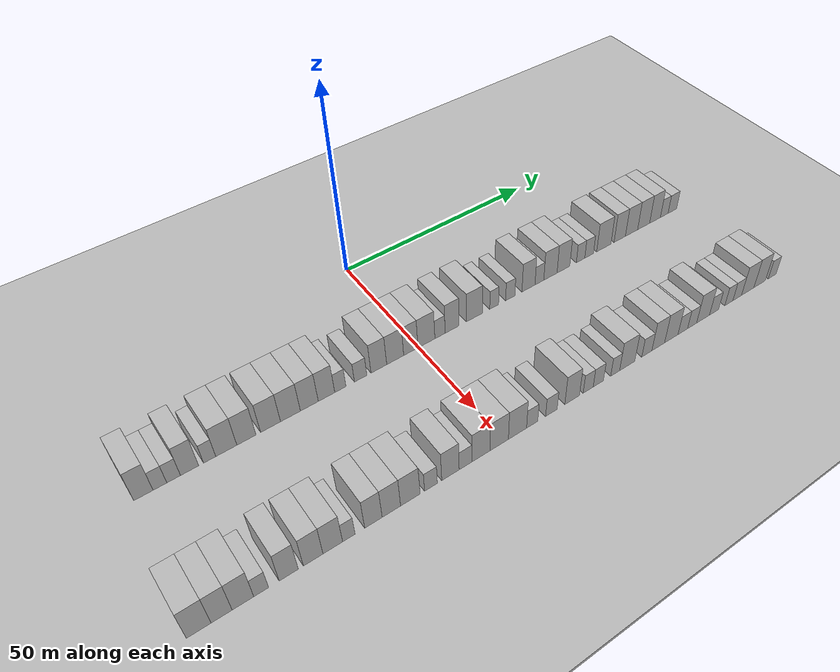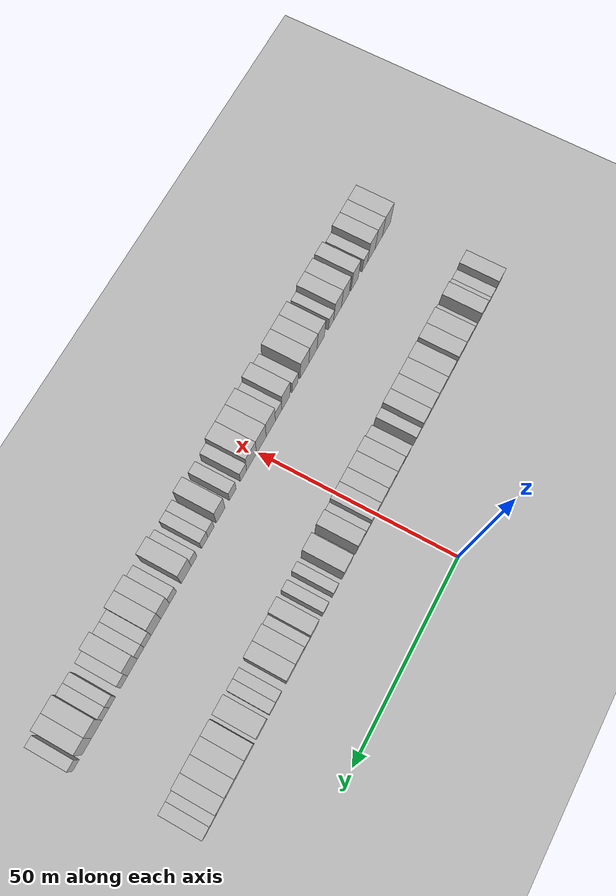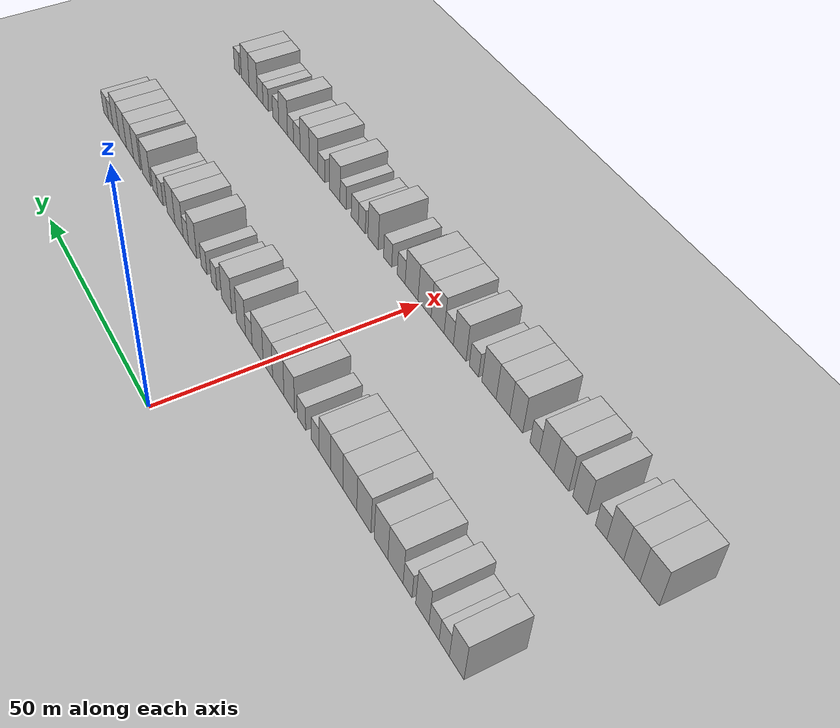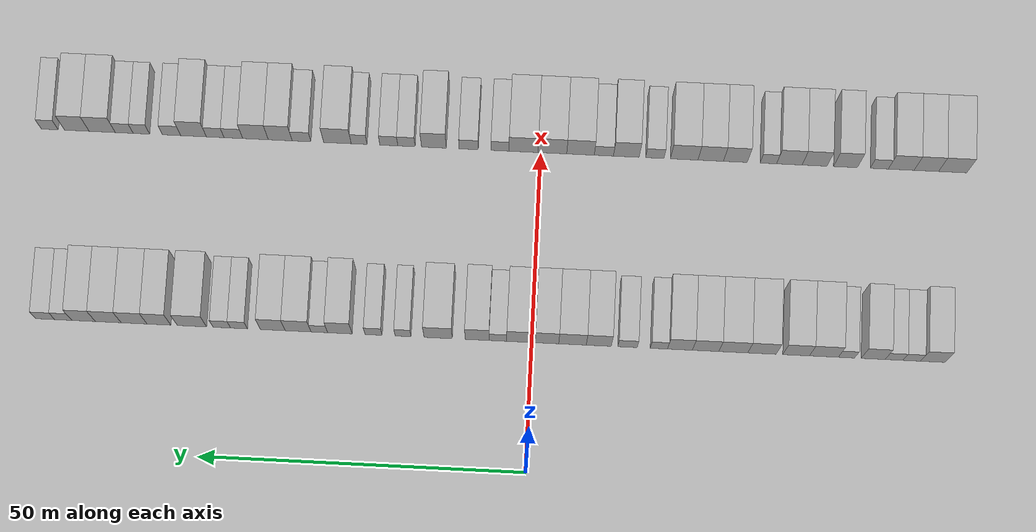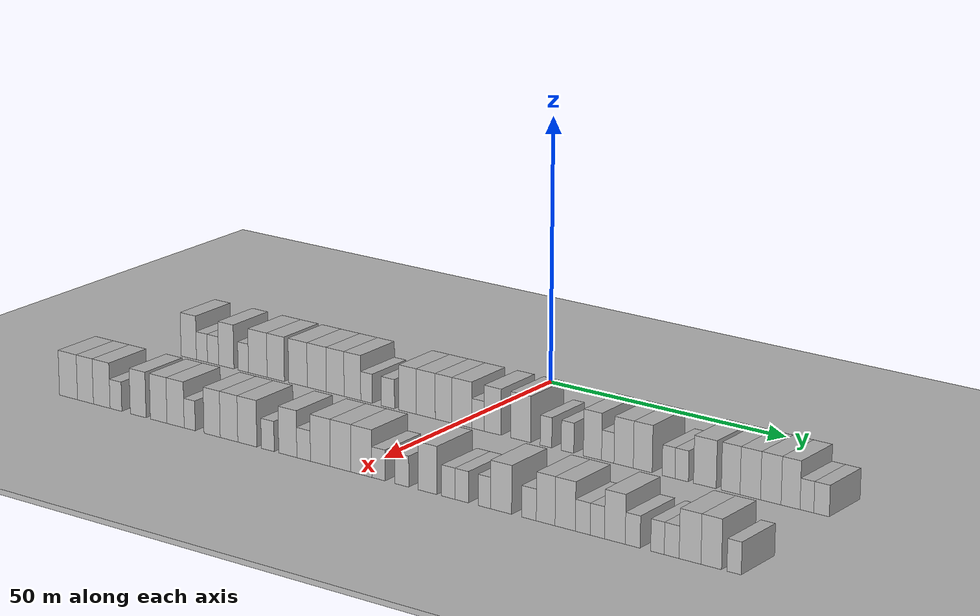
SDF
<sdf version="1.6">
 <world name="default">
  <include><name>ground_plane_1</name><uri>model://HANNAS_ground_plane</uri></include>
  <include>
   <name>ground_plane_2</name>
   <uri>model://HANNAS_ground_plane</uri>
   <pose>100 0 0  0 0 0</pose>
  </include>
  <model name="building_38">
   <static>1</static>
   <pose>25.0000 -61.3049 0 0.000000 0.000000 0.000000</pose>
   <link name="link">
    <pose>0 0 4.50 0 0 0</pose>
    <collision name="collision"><geometry><box><size>10.0000 3.7427 9.0000</size></box></geometry></collision>
    <visual name="visual">
     <cast_shadows>0</cast_shadows>
     <geometry><box><size>10.0000 3.7427 9.0000</size></box></geometry>
     <material>
      <script>
       <uri>model://HANNAS_wall/materials/scripts</uri>
       <uri>model://HANNAS_wall/materials/textures</uri>
       <name>vrc/HANNAS_wall</name>
      </script>
     </material>
    </visual>
   </link>
  </model>
  <model name="building_39">
   <static>1</static>
   <pose>25.0000 -58.0913 0 0.000000 0.000000 0.000000</pose>
   <link name="link">
    <pose>0 0 3.00 0 0 0</pose>
    <collision name="collision"><geometry><box><size>10.0000 2.6844 6.0000</size></box></geometry></collision>
    <visual name="visual">
     <cast_shadows>0</cast_shadows>
     <geometry><box><size>10.0000 2.6844 6.0000</size></box></geometry>
     <material>
      <script>
       <uri>model://HANNAS_wall/materials/scripts</uri>
       <uri>model://HANNAS_wall/materials/textures</uri>
       <name>vrc/HANNAS_wall</name>
      </script>
     </material>
    </visual>
   </link>
  </model>
  <model name="building_40">
   <static>1</static>
   <pose>25.0000 -55.3934 0 0.000000 0.000000 0.000000</pose>
   <link name="link">
    <pose>0 0 3.00 0 0 0</pose>
    <collision name="collision"><geometry><box><size>10.0000 2.7114 6.0000</size></box></geometry></collision>
    <visual name="visual">
     <cast_shadows>0</cast_shadows>
     <geometry><box><size>10.0000 2.7114 6.0000</size></box></geometry>
     <material>
      <script>
       <uri>model://HANNAS_wall/materials/scripts</uri>
       <uri>model://HANNAS_wall/materials/textures</uri>
       <name>vrc/HANNAS_wall</name>
      </script>
     </material>
    </visual>
   </link>
  </model>
  <model name="building_41">
   <static>1</static>
   <pose>25.0000 -52.2071 0 0.000000 0.000000 0.000000</pose>
   <link name="link">
    <pose>0 0 4.50 0 0 0</pose>
    <collision name="collision"><geometry><box><size>10.0000 3.6612 9.0000</size></box></geometry></collision>
    <visual name="visual">
     <cast_shadows>0</cast_shadows>
     <geometry><box><size>10.0000 3.6612 9.0000</size></box></geometry>
     <material>
      <script>
       <uri>model://HANNAS_wall/materials/scripts</uri>
       <uri>model://HANNAS_wall/materials/textures</uri>
       <name>vrc/HANNAS_wall</name>
      </script>
     </material>
    </visual>
   </link>
  </model>
  <model name="building_42">
   <static>1</static>
   <pose>25.0000 -48.1247 0 0.000000 0.000000 0.000000</pose>
   <link name="link">
    <pose>0 0 3.00 0 0 0</pose>
    <collision name="collision"><geometry><box><size>10.0000 2.5035 6.0000</size></box></geometry></collision>
    <visual name="visual">
     <cast_shadows>0</cast_shadows>
     <geometry><box><size>10.0000 2.5035 6.0000</size></box></geometry>
     <material>
      <script>
       <uri>model://HANNAS_wall/materials/scripts</uri>
       <uri>model://HANNAS_wall/materials/textures</uri>
       <name>vrc/HANNAS_wall</name>
      </script>
     </material>
    </visual>
   </link>
  </model>
  <model name="building_43">
   <static>1</static>
   <pose>25.0000 -44.6643 0 0.000000 0.000000 0.000000</pose>
   <link name="link">
    <pose>0 0 4.50 0 0 0</pose>
    <collision name="collision"><geometry><box><size>10.0000 4.4174 9.0000</size></box></geometry></collision>
    <visual name="visual">
     <cast_shadows>0</cast_shadows>
     <geometry><box><size>10.0000 4.4174 9.0000</size></box></geometry>
     <material>
      <script>
       <uri>model://HANNAS_wall/materials/scripts</uri>
       <uri>model://HANNAS_wall/materials/textures</uri>
       <name>vrc/HANNAS_wall</name>
      </script>
     </material>
    </visual>
   </link>
  </model>
  <model name="building_44">
   <static>1</static>
   <pose>25.0000 -40.4192 0 0.000000 0.000000 0.000000</pose>
   <link name="link">
    <pose>0 0 4.50 0 0 0</pose>
    <collision name="collision"><geometry><box><size>10.0000 4.0726 9.0000</size></box></geometry></collision>
    <visual name="visual">
     <cast_shadows>0</cast_shadows>
     <geometry><box><size>10.0000 4.0726 9.0000</size></box></geometry>
     <material>
      <script>
       <uri>model://HANNAS_wall/materials/scripts</uri>
       <uri>model://HANNAS_wall/materials/textures</uri>
       <name>vrc/HANNAS_wall</name>
      </script>
     </material>
    </visual>
   </link>
  </model>
  <model name="building_45">
   <static>1</static>
   <pose>25.0000 -35.2057 0 0.000000 0.000000 0.000000</pose>
   <link name="link">
    <pose>0 0 4.50 0 0 0</pose>
    <collision name="collision"><geometry><box><size>10.0000 4.3545 9.0000</size></box></geometry></collision>
    <visual name="visual">
     <cast_shadows>0</cast_shadows>
     <geometry><box><size>10.0000 4.3545 9.0000</size></box></geometry>
     <material>
      <script>
       <uri>model://HANNAS_wall/materials/scripts</uri>
       <uri>model://HANNAS_wall/materials/textures</uri>
       <name>vrc/HANNAS_wall</name>
      </script>
     </material>
    </visual>
   </link>
  </model>
  <model name="building_46">
   <static>1</static>
   <pose>25.0000 -30.8133 0 0.000000 0.000000 0.000000</pose>
   <link name="link">
    <pose>0 0 4.50 0 0 0</pose>
    <collision name="collision"><geometry><box><size>10.0000 4.4304 9.0000</size></box></geometry></collision>
    <visual name="visual">
     <cast_shadows>0</cast_shadows>
     <geometry><box><size>10.0000 4.4304 9.0000</size></box></geometry>
     <material>
      <script>
       <uri>model://HANNAS_wall/materials/scripts</uri>
       <uri>model://HANNAS_wall/materials/textures</uri>
       <name>vrc/HANNAS_wall</name>
      </script>
     </material>
    </visual>
   </link>
  </model>
  <model name="building_47">
   <static>1</static>
   <pose>25.0000 -26.5654 0 0.000000 0.000000 0.000000</pose>
   <link name="link">
    <pose>0 0 4.50 0 0 0</pose>
    <collision name="collision"><geometry><box><size>10.0000 4.0655 9.0000</size></box></geometry></collision>
    <visual name="visual">
     <cast_shadows>0</cast_shadows>
     <geometry><box><size>10.0000 4.0655 9.0000</size></box></geometry>
     <material>
      <script>
       <uri>model://HANNAS_wall/materials/scripts</uri>
       <uri>model://HANNAS_wall/materials/textures</uri>
       <name>vrc/HANNAS_wall</name>
      </script>
     </material>
    </visual>
   </link>
  </model>
  <model name="building_48">
   <static>1</static>
   <pose>25.0000 -22.6271 0 0.000000 0.000000 0.000000</pose>
   <link name="link">
    <pose>0 0 4.50 0 0 0</pose>
    <collision name="collision"><geometry><box><size>10.0000 3.8111 9.0000</size></box></geometry></collision>
    <visual name="visual">
     <cast_shadows>0</cast_shadows>
     <geometry><box><size>10.0000 3.8111 9.0000</size></box></geometry>
     <material>
      <script>
       <uri>model://HANNAS_wall/materials/scripts</uri>
       <uri>model://HANNAS_wall/materials/textures</uri>
       <name>vrc/HANNAS_wall</name>
      </script>
     </material>
    </visual>
   </link>
  </model>
  <model name="building_49">
   <static>1</static>
   <pose>25.0000 -19.4066 0 0.000000 0.000000 0.000000</pose>
   <link name="link">
    <pose>0 0 3.00 0 0 0</pose>
    <collision name="collision"><geometry><box><size>10.0000 2.6298 6.0000</size></box></geometry></collision>
    <visual name="visual">
     <cast_shadows>0</cast_shadows>
     <geometry><box><size>10.0000 2.6298 6.0000</size></box></geometry>
     <material>
      <script>
       <uri>model://HANNAS_wall/materials/scripts</uri>
       <uri>model://HANNAS_wall/materials/textures</uri>
       <name>vrc/HANNAS_wall</name>
      </script>
     </material>
    </visual>
   </link>
  </model>
  <model name="building_50">
   <static>1</static>
   <pose>25.0000 -14.6031 0 0.000000 0.000000 0.000000</pose>
   <link name="link">
    <pose>0 0 3.00 0 0 0</pose>
    <collision name="collision"><geometry><box><size>10.0000 2.9773 6.0000</size></box></geometry></collision>
    <visual name="visual">
     <cast_shadows>0</cast_shadows>
     <geometry><box><size>10.0000 2.9773 6.0000</size></box></geometry>
     <material>
      <script>
       <uri>model://HANNAS_wall/materials/scripts</uri>
       <uri>model://HANNAS_wall/materials/textures</uri>
       <name>vrc/HANNAS_wall</name>
      </script>
     </material>
    </visual>
   </link>
  </model>
  <model name="building_51">
   <static>1</static>
   <pose>25.0000 -10.1956 0 0.000000 0.000000 0.000000</pose>
   <link name="link">
    <pose>0 0 4.50 0 0 0</pose>
    <collision name="collision"><geometry><box><size>10.0000 3.8377 9.0000</size></box></geometry></collision>
    <visual name="visual">
     <cast_shadows>0</cast_shadows>
     <geometry><box><size>10.0000 3.8377 9.0000</size></box></geometry>
     <material>
      <script>
       <uri>model://HANNAS_wall/materials/scripts</uri>
       <uri>model://HANNAS_wall/materials/textures</uri>
       <name>vrc/HANNAS_wall</name>
      </script>
     </material>
    </visual>
   </link>
  </model>
  <model name="building_52">
   <static>1</static>
   <pose>25.0000 -6.1652 0 0.000000 0.000000 0.000000</pose>
   <link name="link">
    <pose>0 0 4.50 0 0 0</pose>
    <collision name="collision"><geometry><box><size>10.0000 4.2232 9.0000</size></box></geometry></collision>
    <visual name="visual">
     <cast_shadows>0</cast_shadows>
     <geometry><box><size>10.0000 4.2232 9.0000</size></box></geometry>
     <material>
      <script>
       <uri>model://HANNAS_wall/materials/scripts</uri>
       <uri>model://HANNAS_wall/materials/textures</uri>
       <name>vrc/HANNAS_wall</name>
      </script>
     </material>
    </visual>
   </link>
  </model>
  <model name="building_53">
   <static>1</static>
   <pose>25.0000 -2.2436 0 0.000000 0.000000 0.000000</pose>
   <link name="link">
    <pose>0 0 4.50 0 0 0</pose>
    <collision name="collision"><geometry><box><size>10.0000 3.6199 9.0000</size></box></geometry></collision>
    <visual name="visual">
     <cast_shadows>0</cast_shadows>
     <geometry><box><size>10.0000 3.6199 9.0000</size></box></geometry>
     <material>
      <script>
       <uri>model://HANNAS_wall/materials/scripts</uri>
       <uri>model://HANNAS_wall/materials/textures</uri>
       <name>vrc/HANNAS_wall</name>
      </script>
     </material>
    </visual>
   </link>
  </model>
  <model name="building_54">
   <static>1</static>
   <pose>25.0000 1.7339 0 0.000000 0.000000 0.000000</pose>
   <link name="link">
    <pose>0 0 4.50 0 0 0</pose>
    <collision name="collision"><geometry><box><size>10.0000 4.3352 9.0000</size></box></geometry></collision>
    <visual name="visual">
     <cast_shadows>0</cast_shadows>
     <geometry><box><size>10.0000 4.3352 9.0000</size></box></geometry>
     <material>
      <script>
       <uri>model://HANNAS_wall/materials/scripts</uri>
       <uri>model://HANNAS_wall/materials/textures</uri>
       <name>vrc/HANNAS_wall</name>
      </script>
     </material>
    </visual>
   </link>
  </model>
  <model name="building_55">
   <static>1</static>
   <pose>25.0000 5.2427 0 0.000000 0.000000 0.000000</pose>
   <link name="link">
    <pose>0 0 3.00 0 0 0</pose>
    <collision name="collision"><geometry><box><size>10.0000 2.6825 6.0000</size></box></geometry></collision>
    <visual name="visual">
     <cast_shadows>0</cast_shadows>
     <geometry><box><size>10.0000 2.6825 6.0000</size></box></geometry>
     <material>
      <script>
       <uri>model://HANNAS_wall/materials/scripts</uri>
       <uri>model://HANNAS_wall/materials/textures</uri>
       <name>vrc/HANNAS_wall</name>
      </script>
     </material>
    </visual>
   </link>
  </model>
  <model name="building_56">
   <static>1</static>
   <pose>25.0000 8.4225 0 0.000000 0.000000 0.000000</pose>
   <link name="link">
    <pose>0 0 4.50 0 0 0</pose>
    <collision name="collision"><geometry><box><size>10.0000 3.6769 9.0000</size></box></geometry></collision>
    <visual name="visual">
     <cast_shadows>0</cast_shadows>
     <geometry><box><size>10.0000 3.6769 9.0000</size></box></geometry>
     <material>
      <script>
       <uri>model://HANNAS_wall/materials/scripts</uri>
       <uri>model://HANNAS_wall/materials/textures</uri>
       <name>vrc/HANNAS_wall</name>
      </script>
     </material>
    </visual>
   </link>
  </model>
  <model name="building_57">
   <static>1</static>
   <pose>25.0000 14.4207 0 0.000000 0.000000 0.000000</pose>
   <link name="link">
    <pose>0 0 4.50 0 0 0</pose>
    <collision name="collision"><geometry><box><size>10.0000 4.3196 9.0000</size></box></geometry></collision>
    <visual name="visual">
     <cast_shadows>0</cast_shadows>
     <geometry><box><size>10.0000 4.3196 9.0000</size></box></geometry>
     <material>
      <script>
       <uri>model://HANNAS_wall/materials/scripts</uri>
       <uri>model://HANNAS_wall/materials/textures</uri>
       <name>vrc/HANNAS_wall</name>
      </script>
     </material>
    </visual>
   </link>
  </model>
  <model name="building_58">
   <static>1</static>
   <pose>25.0000 19.7999 0 0.000000 0.000000 0.000000</pose>
   <link name="link">
    <pose>0 0 3.00 0 0 0</pose>
    <collision name="collision"><geometry><box><size>10.0000 2.4388 6.0000</size></box></geometry></collision>
    <visual name="visual">
     <cast_shadows>0</cast_shadows>
     <geometry><box><size>10.0000 2.4388 6.0000</size></box></geometry>
     <material>
      <script>
       <uri>model://HANNAS_wall/materials/scripts</uri>
       <uri>model://HANNAS_wall/materials/textures</uri>
       <name>vrc/HANNAS_wall</name>
      </script>
     </material>
    </visual>
   </link>
  </model>
  <model name="building_59">
   <static>1</static>
   <pose>25.0000 24.3251 0 0.000000 0.000000 0.000000</pose>
   <link name="link">
    <pose>0 0 3.00 0 0 0</pose>
    <collision name="collision"><geometry><box><size>10.0000 2.6116 6.0000</size></box></geometry></collision>
    <visual name="visual">
     <cast_shadows>0</cast_shadows>
     <geometry><box><size>10.0000 2.6116 6.0000</size></box></geometry>
     <material>
      <script>
       <uri>model://HANNAS_wall/materials/scripts</uri>
       <uri>model://HANNAS_wall/materials/textures</uri>
       <name>vrc/HANNAS_wall</name>
      </script>
     </material>
    </visual>
   </link>
  </model>
  <model name="building_60">
   <static>1</static>
   <pose>25.0000 29.5080 0 0.000000 0.000000 0.000000</pose>
   <link name="link">
    <pose>0 0 4.50 0 0 0</pose>
    <collision name="collision"><geometry><box><size>10.0000 3.7542 9.0000</size></box></geometry></collision>
    <visual name="visual">
     <cast_shadows>0</cast_shadows>
     <geometry><box><size>10.0000 3.7542 9.0000</size></box></geometry>
     <material>
      <script>
       <uri>model://HANNAS_wall/materials/scripts</uri>
       <uri>model://HANNAS_wall/materials/textures</uri>
       <name>vrc/HANNAS_wall</name>
      </script>
     </material>
    </visual>
   </link>
  </model>
  <model name="building_61">
   <static>1</static>
   <pose>25.0000 32.6641 0 0.000000 0.000000 0.000000</pose>
   <link name="link">
    <pose>0 0 3.00 0 0 0</pose>
    <collision name="collision"><geometry><box><size>10.0000 2.5580 6.0000</size></box></geometry></collision>
    <visual name="visual">
     <cast_shadows>0</cast_shadows>
     <geometry><box><size>10.0000 2.5580 6.0000</size></box></geometry>
     <material>
      <script>
       <uri>model://HANNAS_wall/materials/scripts</uri>
       <uri>model://HANNAS_wall/materials/textures</uri>
       <name>vrc/HANNAS_wall</name>
      </script>
     </material>
    </visual>
   </link>
  </model>
  <model name="building_62">
   <static>1</static>
   <pose>25.0000 35.9144 0 0.000000 0.000000 0.000000</pose>
   <link name="link">
    <pose>0 0 4.50 0 0 0</pose>
    <collision name="collision"><geometry><box><size>10.0000 3.9425 9.0000</size></box></geometry></collision>
    <visual name="visual">
     <cast_shadows>0</cast_shadows>
     <geometry><box><size>10.0000 3.9425 9.0000</size></box></geometry>
     <material>
      <script>
       <uri>model://HANNAS_wall/materials/scripts</uri>
       <uri>model://HANNAS_wall/materials/textures</uri>
       <name>vrc/HANNAS_wall</name>
      </script>
     </material>
    </visual>
   </link>
  </model>
  <model name="building_63">
   <static>1</static>
   <pose>25.0000 39.7955 0 0.000000 0.000000 0.000000</pose>
   <link name="link">
    <pose>0 0 4.50 0 0 0</pose>
    <collision name="collision"><geometry><box><size>10.0000 3.8197 9.0000</size></box></geometry></collision>
    <visual name="visual">
     <cast_shadows>0</cast_shadows>
     <geometry><box><size>10.0000 3.8197 9.0000</size></box></geometry>
     <material>
      <script>
       <uri>model://HANNAS_wall/materials/scripts</uri>
       <uri>model://HANNAS_wall/materials/textures</uri>
       <name>vrc/HANNAS_wall</name>
      </script>
     </material>
    </visual>
   </link>
  </model>
  <model name="building_64">
   <static>1</static>
   <pose>25.0000 44.9944 0 0.000000 0.000000 0.000000</pose>
   <link name="link">
    <pose>0 0 3.00 0 0 0</pose>
    <collision name="collision"><geometry><box><size>10.0000 2.5781 6.0000</size></box></geometry></collision>
    <visual name="visual">
     <cast_shadows>0</cast_shadows>
     <geometry><box><size>10.0000 2.5781 6.0000</size></box></geometry>
     <material>
      <script>
       <uri>model://HANNAS_wall/materials/scripts</uri>
       <uri>model://HANNAS_wall/materials/textures</uri>
       <name>vrc/HANNAS_wall</name>
      </script>
     </material>
    </visual>
   </link>
  </model>
  <model name="building_65">
   <static>1</static>
   <pose>25.0000 47.6319 0 0.000000 0.000000 0.000000</pose>
   <link name="link">
    <pose>0 0 3.00 0 0 0</pose>
    <collision name="collision"><geometry><box><size>10.0000 2.6969 6.0000</size></box></geometry></collision>
    <visual name="visual">
     <cast_shadows>0</cast_shadows>
     <geometry><box><size>10.0000 2.6969 6.0000</size></box></geometry>
     <material>
      <script>
       <uri>model://HANNAS_wall/materials/scripts</uri>
       <uri>model://HANNAS_wall/materials/textures</uri>
       <name>vrc/HANNAS_wall</name>
      </script>
     </material>
    </visual>
   </link>
  </model>
  <model name="building_66">
   <static>1</static>
   <pose>25.0000 52.2253 0 0.000000 0.000000 0.000000</pose>
   <link name="link">
    <pose>0 0 4.50 0 0 0</pose>
    <collision name="collision"><geometry><box><size>10.0000 4.4900 9.0000</size></box></geometry></collision>
    <visual name="visual">
     <cast_shadows>0</cast_shadows>
     <geometry><box><size>10.0000 4.4900 9.0000</size></box></geometry>
     <material>
      <script>
       <uri>model://HANNAS_wall/materials/scripts</uri>
       <uri>model://HANNAS_wall/materials/textures</uri>
       <name>vrc/HANNAS_wall</name>
      </script>
     </material>
    </visual>
   </link>
  </model>
  <model name="building_67">
   <static>1</static>
   <pose>25.0000 57.3033 0 0.000000 0.000000 0.000000</pose>
   <link name="link">
    <pose>0 0 4.50 0 0 0</pose>
    <collision name="collision"><geometry><box><size>10.0000 3.6659 9.0000</size></box></geometry></collision>
    <visual name="visual">
     <cast_shadows>0</cast_shadows>
     <geometry><box><size>10.0000 3.6659 9.0000</size></box></geometry>
     <material>
      <script>
       <uri>model://HANNAS_wall/materials/scripts</uri>
       <uri>model://HANNAS_wall/materials/textures</uri>
       <name>vrc/HANNAS_wall</name>
      </script>
     </material>
    </visual>
   </link>
  </model>
  <model name="building_68">
   <static>1</static>
   <pose>25.0000 61.1280 0 0.000000 0.000000 0.000000</pose>
   <link name="link">
    <pose>0 0 4.50 0 0 0</pose>
    <collision name="collision"><geometry><box><size>10.0000 3.9836 9.0000</size></box></geometry></collision>
    <visual name="visual">
     <cast_shadows>0</cast_shadows>
     <geometry><box><size>10.0000 3.9836 9.0000</size></box></geometry>
     <material>
      <script>
       <uri>model://HANNAS_wall/materials/scripts</uri>
       <uri>model://HANNAS_wall/materials/textures</uri>
       <name>vrc/HANNAS_wall</name>
      </script>
     </material>
    </visual>
   </link>
  </model>
  <model name="building_69">
   <static>1</static>
   <pose>25.0000 65.0995 0 0.000000 0.000000 0.000000</pose>
   <link name="link">
    <pose>0 0 4.50 0 0 0</pose>
    <collision name="collision"><geometry><box><size>10.0000 3.9593 9.0000</size></box></geometry></collision>
    <visual name="visual">
     <cast_shadows>0</cast_shadows>
     <geometry><box><size>10.0000 3.9593 9.0000</size></box></geometry>
     <material>
      <script>
       <uri>model://HANNAS_wall/materials/scripts</uri>
       <uri>model://HANNAS_wall/materials/textures</uri>
       <name>vrc/HANNAS_wall</name>
      </script>
     </material>
    </visual>
   </link>
  </model>
  <model name="building_70">
   <static>1</static>
   <pose>25.0000 68.8895 0 0.000000 0.000000 0.000000</pose>
   <link name="link">
    <pose>0 0 4.50 0 0 0</pose>
    <collision name="collision"><geometry><box><size>10.0000 3.6207 9.0000</size></box></geometry></collision>
    <visual name="visual">
     <cast_shadows>0</cast_shadows>
     <geometry><box><size>10.0000 3.6207 9.0000</size></box></geometry>
     <material>
      <script>
       <uri>model://HANNAS_wall/materials/scripts</uri>
       <uri>model://HANNAS_wall/materials/textures</uri>
       <name>vrc/HANNAS_wall</name>
      </script>
     </material>
    </visual>
   </link>
  </model>
  <model name="building_71">
   <static>1</static>
   <pose>25.0000 72.0127 0 0.000000 0.000000 0.000000</pose>
   <link name="link">
    <pose>0 0 3.00 0 0 0</pose>
    <collision name="collision"><geometry><box><size>10.0000 2.6259 6.0000</size></box></geometry></collision>
    <visual name="visual">
     <cast_shadows>0</cast_shadows>
     <geometry><box><size>10.0000 2.6259 6.0000</size></box></geometry>
     <material>
      <script>
       <uri>model://HANNAS_wall/materials/scripts</uri>
       <uri>model://HANNAS_wall/materials/textures</uri>
       <name>vrc/HANNAS_wall</name>
      </script>
     </material>
    </visual>
   </link>
  </model>
  <model name="building_72">
   <static>1</static>
   <pose>25.0000 74.7918 0 0.000000 0.000000 0.000000</pose>
   <link name="link">
    <pose>0 0 3.00 0 0 0</pose>
    <collision name="collision"><geometry><box><size>10.0000 2.9324 6.0000</size></box></geometry></collision>
    <visual name="visual">
     <cast_shadows>0</cast_shadows>
     <geometry><box><size>10.0000 2.9324 6.0000</size></box></geometry>
     <material>
      <script>
       <uri>model://HANNAS_wall/materials/scripts</uri>
       <uri>model://HANNAS_wall/materials/textures</uri>
       <name>vrc/HANNAS_wall</name>
      </script>
     </material>
    </visual>
   </link>
  </model>
  <model name="building_145">
   <static>1</static>
   <pose>55.0000 -64.0112 0 0.000000 0.000000 0.000000</pose>
   <link name="link">
    <pose>0 0 4.50 0 0 0</pose>
    <collision name="collision"><geometry><box><size>10.0000 4.3783 9.0000</size></box></geometry></collision>
    <visual name="visual">
     <cast_shadows>0</cast_shadows>
     <geometry><box><size>10.0000 4.3783 9.0000</size></box></geometry>
     <material>
      <script>
       <uri>model://HANNAS_wall/materials/scripts</uri>
       <uri>model://HANNAS_wall/materials/textures</uri>
       <name>vrc/HANNAS_wall</name>
      </script>
     </material>
    </visual>
   </link>
  </model>
  <model name="building_146">
   <static>1</static>
   <pose>55.0000 -59.9124 0 0.000000 0.000000 0.000000</pose>
   <link name="link">
    <pose>0 0 4.50 0 0 0</pose>
    <collision name="collision"><geometry><box><size>10.0000 3.8192 9.0000</size></box></geometry></collision>
    <visual name="visual">
     <cast_shadows>0</cast_shadows>
     <geometry><box><size>10.0000 3.8192 9.0000</size></box></geometry>
     <material>
      <script>
       <uri>model://HANNAS_wall/materials/scripts</uri>
       <uri>model://HANNAS_wall/materials/textures</uri>
       <name>vrc/HANNAS_wall</name>
      </script>
     </material>
    </visual>
   </link>
  </model>
  <model name="building_147">
   <static>1</static>
   <pose>55.0000 -56.0056 0 0.000000 0.000000 0.000000</pose>
   <link name="link">
    <pose>0 0 4.50 0 0 0</pose>
    <collision name="collision"><geometry><box><size>10.0000 3.9946 9.0000</size></box></geometry></collision>
    <visual name="visual">
     <cast_shadows>0</cast_shadows>
     <geometry><box><size>10.0000 3.9946 9.0000</size></box></geometry>
     <material>
      <script>
       <uri>model://HANNAS_wall/materials/scripts</uri>
       <uri>model://HANNAS_wall/materials/textures</uri>
       <name>vrc/HANNAS_wall</name>
      </script>
     </material>
    </visual>
   </link>
  </model>
  <model name="building_148">
   <static>1</static>
   <pose>55.0000 -52.6108 0 0.000000 0.000000 0.000000</pose>
   <link name="link">
    <pose>0 0 3.00 0 0 0</pose>
    <collision name="collision"><geometry><box><size>10.0000 2.7949 6.0000</size></box></geometry></collision>
    <visual name="visual">
     <cast_shadows>0</cast_shadows>
     <geometry><box><size>10.0000 2.7949 6.0000</size></box></geometry>
     <material>
      <script>
       <uri>model://HANNAS_wall/materials/scripts</uri>
       <uri>model://HANNAS_wall/materials/textures</uri>
       <name>vrc/HANNAS_wall</name>
      </script>
     </material>
    </visual>
   </link>
  </model>
  <model name="building_149">
   <static>1</static>
   <pose>55.0000 -47.3544 0 0.000000 0.000000 0.000000</pose>
   <link name="link">
    <pose>0 0 4.50 0 0 0</pose>
    <collision name="collision"><geometry><box><size>10.0000 3.7179 9.0000</size></box></geometry></collision>
    <visual name="visual">
     <cast_shadows>0</cast_shadows>
     <geometry><box><size>10.0000 3.7179 9.0000</size></box></geometry>
     <material>
      <script>
       <uri>model://HANNAS_wall/materials/scripts</uri>
       <uri>model://HANNAS_wall/materials/textures</uri>
       <name>vrc/HANNAS_wall</name>
      </script>
     </material>
    </visual>
   </link>
  </model>
  <model name="building_150">
   <static>1</static>
   <pose>55.0000 -42.5485 0 0.000000 0.000000 0.000000</pose>
   <link name="link">
    <pose>0 0 4.50 0 0 0</pose>
    <collision name="collision"><geometry><box><size>10.0000 3.8938 9.0000</size></box></geometry></collision>
    <visual name="visual">
     <cast_shadows>0</cast_shadows>
     <geometry><box><size>10.0000 3.8938 9.0000</size></box></geometry>
     <material>
      <script>
       <uri>model://HANNAS_wall/materials/scripts</uri>
       <uri>model://HANNAS_wall/materials/textures</uri>
       <name>vrc/HANNAS_wall</name>
      </script>
     </material>
    </visual>
   </link>
  </model>
  <model name="building_151">
   <static>1</static>
   <pose>55.0000 -38.6176 0 0.000000 0.000000 0.000000</pose>
   <link name="link">
    <pose>0 0 4.50 0 0 0</pose>
    <collision name="collision"><geometry><box><size>10.0000 3.9681 9.0000</size></box></geometry></collision>
    <visual name="visual">
     <cast_shadows>0</cast_shadows>
     <geometry><box><size>10.0000 3.9681 9.0000</size></box></geometry>
     <material>
      <script>
       <uri>model://HANNAS_wall/materials/scripts</uri>
       <uri>model://HANNAS_wall/materials/textures</uri>
       <name>vrc/HANNAS_wall</name>
      </script>
     </material>
    </visual>
   </link>
  </model>
  <model name="building_152">
   <static>1</static>
   <pose>55.0000 -35.3519 0 0.000000 0.000000 0.000000</pose>
   <link name="link">
    <pose>0 0 3.00 0 0 0</pose>
    <collision name="collision"><geometry><box><size>10.0000 2.5633 6.0000</size></box></geometry></collision>
    <visual name="visual">
     <cast_shadows>0</cast_shadows>
     <geometry><box><size>10.0000 2.5633 6.0000</size></box></geometry>
     <material>
      <script>
       <uri>model://HANNAS_wall/materials/scripts</uri>
       <uri>model://HANNAS_wall/materials/textures</uri>
       <name>vrc/HANNAS_wall</name>
      </script>
     </material>
    </visual>
   </link>
  </model>
  <model name="building_153">
   <static>1</static>
   <pose>55.0000 -30.2225 0 0.000000 0.000000 0.000000</pose>
   <link name="link">
    <pose>0 0 4.50 0 0 0</pose>
    <collision name="collision"><geometry><box><size>10.0000 3.6955 9.0000</size></box></geometry></collision>
    <visual name="visual">
     <cast_shadows>0</cast_shadows>
     <geometry><box><size>10.0000 3.6955 9.0000</size></box></geometry>
     <material>
      <script>
       <uri>model://HANNAS_wall/materials/scripts</uri>
       <uri>model://HANNAS_wall/materials/textures</uri>
       <name>vrc/HANNAS_wall</name>
      </script>
     </material>
    </visual>
   </link>
  </model>
  <model name="building_154">
   <static>1</static>
   <pose>55.0000 -26.3883 0 0.000000 0.000000 0.000000</pose>
   <link name="link">
    <pose>0 0 4.50 0 0 0</pose>
    <collision name="collision"><geometry><box><size>10.0000 3.9729 9.0000</size></box></geometry></collision>
    <visual name="visual">
     <cast_shadows>0</cast_shadows>
     <geometry><box><size>10.0000 3.9729 9.0000</size></box></geometry>
     <material>
      <script>
       <uri>model://HANNAS_wall/materials/scripts</uri>
       <uri>model://HANNAS_wall/materials/textures</uri>
       <name>vrc/HANNAS_wall</name>
      </script>
     </material>
    </visual>
   </link>
  </model>
  <model name="building_155">
   <static>1</static>
   <pose>55.0000 -22.2607 0 0.000000 0.000000 0.000000</pose>
   <link name="link">
    <pose>0 0 4.50 0 0 0</pose>
    <collision name="collision"><geometry><box><size>10.0000 4.2823 9.0000</size></box></geometry></collision>
    <visual name="visual">
     <cast_shadows>0</cast_shadows>
     <geometry><box><size>10.0000 4.2823 9.0000</size></box></geometry>
     <material>
      <script>
       <uri>model://HANNAS_wall/materials/scripts</uri>
       <uri>model://HANNAS_wall/materials/textures</uri>
       <name>vrc/HANNAS_wall</name>
      </script>
     </material>
    </visual>
   </link>
  </model>
  <model name="building_156">
   <static>1</static>
   <pose>55.0000 -17.6868 0 0.000000 0.000000 0.000000</pose>
   <link name="link">
    <pose>0 0 3.00 0 0 0</pose>
    <collision name="collision"><geometry><box><size>10.0000 2.8654 6.0000</size></box></geometry></collision>
    <visual name="visual">
     <cast_shadows>0</cast_shadows>
     <geometry><box><size>10.0000 2.8654 6.0000</size></box></geometry>
     <material>
      <script>
       <uri>model://HANNAS_wall/materials/scripts</uri>
       <uri>model://HANNAS_wall/materials/textures</uri>
       <name>vrc/HANNAS_wall</name>
      </script>
     </material>
    </visual>
   </link>
  </model>
  <model name="building_157">
   <static>1</static>
   <pose>55.0000 -13.2540 0 0.000000 0.000000 0.000000</pose>
   <link name="link">
    <pose>0 0 4.50 0 0 0</pose>
    <collision name="collision"><geometry><box><size>10.0000 4.0003 9.0000</size></box></geometry></collision>
    <visual name="visual">
     <cast_shadows>0</cast_shadows>
     <geometry><box><size>10.0000 4.0003 9.0000</size></box></geometry>
     <material>
      <script>
       <uri>model://HANNAS_wall/materials/scripts</uri>
       <uri>model://HANNAS_wall/materials/textures</uri>
       <name>vrc/HANNAS_wall</name>
      </script>
     </material>
    </visual>
   </link>
  </model>
  <model name="building_158">
   <static>1</static>
   <pose>55.0000 -9.7618 0 0.000000 0.000000 0.000000</pose>
   <link name="link">
    <pose>0 0 3.00 0 0 0</pose>
    <collision name="collision"><geometry><box><size>10.0000 2.9840 6.0000</size></box></geometry></collision>
    <visual name="visual">
     <cast_shadows>0</cast_shadows>
     <geometry><box><size>10.0000 2.9840 6.0000</size></box></geometry>
     <material>
      <script>
       <uri>model://HANNAS_wall/materials/scripts</uri>
       <uri>model://HANNAS_wall/materials/textures</uri>
       <name>vrc/HANNAS_wall</name>
      </script>
     </material>
    </visual>
   </link>
  </model>
  <model name="building_159">
   <static>1</static>
   <pose>55.0000 -6.1207 0 0.000000 0.000000 0.000000</pose>
   <link name="link">
    <pose>0 0 4.50 0 0 0</pose>
    <collision name="collision"><geometry><box><size>10.0000 4.2982 9.0000</size></box></geometry></collision>
    <visual name="visual">
     <cast_shadows>0</cast_shadows>
     <geometry><box><size>10.0000 4.2982 9.0000</size></box></geometry>
     <material>
      <script>
       <uri>model://HANNAS_wall/materials/scripts</uri>
       <uri>model://HANNAS_wall/materials/textures</uri>
       <name>vrc/HANNAS_wall</name>
      </script>
     </material>
    </visual>
   </link>
  </model>
  <model name="building_160">
   <static>1</static>
   <pose>55.0000 -1.7383 0 0.000000 0.000000 0.000000</pose>
   <link name="link">
    <pose>0 0 4.50 0 0 0</pose>
    <collision name="collision"><geometry><box><size>10.0000 4.4667 9.0000</size></box></geometry></collision>
    <visual name="visual">
     <cast_shadows>0</cast_shadows>
     <geometry><box><size>10.0000 4.4667 9.0000</size></box></geometry>
     <material>
      <script>
       <uri>model://HANNAS_wall/materials/scripts</uri>
       <uri>model://HANNAS_wall/materials/textures</uri>
       <name>vrc/HANNAS_wall</name>
      </script>
     </material>
    </visual>
   </link>
  </model>
  <model name="building_161">
   <static>1</static>
   <pose>55.0000 2.7405 0 0.000000 0.000000 0.000000</pose>
   <link name="link">
    <pose>0 0 4.50 0 0 0</pose>
    <collision name="collision"><geometry><box><size>10.0000 4.4909 9.0000</size></box></geometry></collision>
    <visual name="visual">
     <cast_shadows>0</cast_shadows>
     <geometry><box><size>10.0000 4.4909 9.0000</size></box></geometry>
     <material>
      <script>
       <uri>model://HANNAS_wall/materials/scripts</uri>
       <uri>model://HANNAS_wall/materials/textures</uri>
       <name>vrc/HANNAS_wall</name>
      </script>
     </material>
    </visual>
   </link>
  </model>
  <model name="building_162">
   <static>1</static>
   <pose>55.0000 6.3953 0 0.000000 0.000000 0.000000</pose>
   <link name="link">
    <pose>0 0 3.00 0 0 0</pose>
    <collision name="collision"><geometry><box><size>10.0000 2.8187 6.0000</size></box></geometry></collision>
    <visual name="visual">
     <cast_shadows>0</cast_shadows>
     <geometry><box><size>10.0000 2.8187 6.0000</size></box></geometry>
     <material>
      <script>
       <uri>model://HANNAS_wall/materials/scripts</uri>
       <uri>model://HANNAS_wall/materials/textures</uri>
       <name>vrc/HANNAS_wall</name>
      </script>
     </material>
    </visual>
   </link>
  </model>
  <model name="building_163">
   <static>1</static>
   <pose>55.0000 11.2933 0 0.000000 0.000000 0.000000</pose>
   <link name="link">
    <pose>0 0 3.00 0 0 0</pose>
    <collision name="collision"><geometry><box><size>10.0000 2.9774 6.0000</size></box></geometry></collision>
    <visual name="visual">
     <cast_shadows>0</cast_shadows>
     <geometry><box><size>10.0000 2.9774 6.0000</size></box></geometry>
     <material>
      <script>
       <uri>model://HANNAS_wall/materials/scripts</uri>
       <uri>model://HANNAS_wall/materials/textures</uri>
       <name>vrc/HANNAS_wall</name>
      </script>
     </material>
    </visual>
   </link>
  </model>
  <model name="building_164">
   <static>1</static>
   <pose>55.0000 16.7126 0 0.000000 0.000000 0.000000</pose>
   <link name="link">
    <pose>0 0 4.50 0 0 0</pose>
    <collision name="collision"><geometry><box><size>10.0000 3.8612 9.0000</size></box></geometry></collision>
    <visual name="visual">
     <cast_shadows>0</cast_shadows>
     <geometry><box><size>10.0000 3.8612 9.0000</size></box></geometry>
     <material>
      <script>
       <uri>model://HANNAS_wall/materials/scripts</uri>
       <uri>model://HANNAS_wall/materials/textures</uri>
       <name>vrc/HANNAS_wall</name>
      </script>
     </material>
    </visual>
   </link>
  </model>
  <model name="building_165">
   <static>1</static>
   <pose>55.0000 20.9922 0 0.000000 0.000000 0.000000</pose>
   <link name="link">
    <pose>0 0 3.00 0 0 0</pose>
    <collision name="collision"><geometry><box><size>10.0000 2.6981 6.0000</size></box></geometry></collision>
    <visual name="visual">
     <cast_shadows>0</cast_shadows>
     <geometry><box><size>10.0000 2.6981 6.0000</size></box></geometry>
     <material>
      <script>
       <uri>model://HANNAS_wall/materials/scripts</uri>
       <uri>model://HANNAS_wall/materials/textures</uri>
       <name>vrc/HANNAS_wall</name>
      </script>
     </material>
    </visual>
   </link>
  </model>
  <model name="building_166">
   <static>1</static>
   <pose>55.0000 23.7374 0 0.000000 0.000000 0.000000</pose>
   <link name="link">
    <pose>0 0 3.00 0 0 0</pose>
    <collision name="collision"><geometry><box><size>10.0000 2.7922 6.0000</size></box></geometry></collision>
    <visual name="visual">
     <cast_shadows>0</cast_shadows>
     <geometry><box><size>10.0000 2.7922 6.0000</size></box></geometry>
     <material>
      <script>
       <uri>model://HANNAS_wall/materials/scripts</uri>
       <uri>model://HANNAS_wall/materials/textures</uri>
       <name>vrc/HANNAS_wall</name>
      </script>
     </material>
    </visual>
   </link>
  </model>
  <model name="building_167">
   <static>1</static>
   <pose>55.0000 28.3696 0 0.000000 0.000000 0.000000</pose>
   <link name="link">
    <pose>0 0 3.00 0 0 0</pose>
    <collision name="collision"><geometry><box><size>10.0000 2.4724 6.0000</size></box></geometry></collision>
    <visual name="visual">
     <cast_shadows>0</cast_shadows>
     <geometry><box><size>10.0000 2.4724 6.0000</size></box></geometry>
     <material>
      <script>
       <uri>model://HANNAS_wall/materials/scripts</uri>
       <uri>model://HANNAS_wall/materials/textures</uri>
       <name>vrc/HANNAS_wall</name>
      </script>
     </material>
    </visual>
   </link>
  </model>
  <model name="building_168">
   <static>1</static>
   <pose>55.0000 31.7528 0 0.000000 0.000000 0.000000</pose>
   <link name="link">
    <pose>0 0 4.50 0 0 0</pose>
    <collision name="collision"><geometry><box><size>10.0000 4.2940 9.0000</size></box></geometry></collision>
    <visual name="visual">
     <cast_shadows>0</cast_shadows>
     <geometry><box><size>10.0000 4.2940 9.0000</size></box></geometry>
     <material>
      <script>
       <uri>model://HANNAS_wall/materials/scripts</uri>
       <uri>model://HANNAS_wall/materials/textures</uri>
       <name>vrc/HANNAS_wall</name>
      </script>
     </material>
    </visual>
   </link>
  </model>
  <model name="building_169">
   <static>1</static>
   <pose>55.0000 37.3615 0 0.000000 0.000000 0.000000</pose>
   <link name="link">
    <pose>0 0 3.00 0 0 0</pose>
    <collision name="collision"><geometry><box><size>10.0000 2.9235 6.0000</size></box></geometry></collision>
    <visual name="visual">
     <cast_shadows>0</cast_shadows>
     <geometry><box><size>10.0000 2.9235 6.0000</size></box></geometry>
     <material>
      <script>
       <uri>model://HANNAS_wall/materials/scripts</uri>
       <uri>model://HANNAS_wall/materials/textures</uri>
       <name>vrc/HANNAS_wall</name>
      </script>
     </material>
    </visual>
   </link>
  </model>
  <model name="building_170">
   <static>1</static>
   <pose>55.0000 40.6864 0 0.000000 0.000000 0.000000</pose>
   <link name="link">
    <pose>0 0 4.50 0 0 0</pose>
    <collision name="collision"><geometry><box><size>10.0000 3.7263 9.0000</size></box></geometry></collision>
    <visual name="visual">
     <cast_shadows>0</cast_shadows>
     <geometry><box><size>10.0000 3.7263 9.0000</size></box></geometry>
     <material>
      <script>
       <uri>model://HANNAS_wall/materials/scripts</uri>
       <uri>model://HANNAS_wall/materials/textures</uri>
       <name>vrc/HANNAS_wall</name>
      </script>
     </material>
    </visual>
   </link>
  </model>
  <model name="building_171">
   <static>1</static>
   <pose>55.0000 44.5465 0 0.000000 0.000000 0.000000</pose>
   <link name="link">
    <pose>0 0 4.50 0 0 0</pose>
    <collision name="collision"><geometry><box><size>10.0000 3.9939 9.0000</size></box></geometry></collision>
    <visual name="visual">
     <cast_shadows>0</cast_shadows>
     <geometry><box><size>10.0000 3.9939 9.0000</size></box></geometry>
     <material>
      <script>
       <uri>model://HANNAS_wall/materials/scripts</uri>
       <uri>model://HANNAS_wall/materials/textures</uri>
       <name>vrc/HANNAS_wall</name>
      </script>
     </material>
    </visual>
   </link>
  </model>
  <model name="building_172">
   <static>1</static>
   <pose>55.0000 47.9981 0 0.000000 0.000000 0.000000</pose>
   <link name="link">
    <pose>0 0 3.00 0 0 0</pose>
    <collision name="collision"><geometry><box><size>10.0000 2.9094 6.0000</size></box></geometry></collision>
    <visual name="visual">
     <cast_shadows>0</cast_shadows>
     <geometry><box><size>10.0000 2.9094 6.0000</size></box></geometry>
     <material>
      <script>
       <uri>model://HANNAS_wall/materials/scripts</uri>
       <uri>model://HANNAS_wall/materials/textures</uri>
       <name>vrc/HANNAS_wall</name>
      </script>
     </material>
    </visual>
   </link>
  </model>
  <model name="building_173">
   <static>1</static>
   <pose>55.0000 50.8349 0 0.000000 0.000000 0.000000</pose>
   <link name="link">
    <pose>0 0 3.00 0 0 0</pose>
    <collision name="collision"><geometry><box><size>10.0000 2.7642 6.0000</size></box></geometry></collision>
    <visual name="visual">
     <cast_shadows>0</cast_shadows>
     <geometry><box><size>10.0000 2.7642 6.0000</size></box></geometry>
     <material>
      <script>
       <uri>model://HANNAS_wall/materials/scripts</uri>
       <uri>model://HANNAS_wall/materials/textures</uri>
       <name>vrc/HANNAS_wall</name>
      </script>
     </material>
    </visual>
   </link>
  </model>
  <model name="building_174">
   <static>1</static>
   <pose>55.0000 54.2194 0 0.000000 0.000000 0.000000</pose>
   <link name="link">
    <pose>0 0 4.50 0 0 0</pose>
    <collision name="collision"><geometry><box><size>10.0000 4.0048 9.0000</size></box></geometry></collision>
    <visual name="visual">
     <cast_shadows>0</cast_shadows>
     <geometry><box><size>10.0000 4.0048 9.0000</size></box></geometry>
     <material>
      <script>
       <uri>model://HANNAS_wall/materials/scripts</uri>
       <uri>model://HANNAS_wall/materials/textures</uri>
       <name>vrc/HANNAS_wall</name>
      </script>
     </material>
    </visual>
   </link>
  </model>
  <model name="building_175">
   <static>1</static>
   <pose>55.0000 57.6495 0 0.000000 0.000000 0.000000</pose>
   <link name="link">
    <pose>0 0 3.00 0 0 0</pose>
    <collision name="collision"><geometry><box><size>10.0000 2.8555 6.0000</size></box></geometry></collision>
    <visual name="visual">
     <cast_shadows>0</cast_shadows>
     <geometry><box><size>10.0000 2.8555 6.0000</size></box></geometry>
     <material>
      <script>
       <uri>model://HANNAS_wall/materials/scripts</uri>
       <uri>model://HANNAS_wall/materials/textures</uri>
       <name>vrc/HANNAS_wall</name>
      </script>
     </material>
    </visual>
   </link>
  </model>
  <model name="building_176">
   <static>1</static>
   <pose>55.0000 62.3640 0 0.000000 0.000000 0.000000</pose>
   <link name="link">
    <pose>0 0 3.00 0 0 0</pose>
    <collision name="collision"><geometry><box><size>10.0000 2.5734 6.0000</size></box></geometry></collision>
    <visual name="visual">
     <cast_shadows>0</cast_shadows>
     <geometry><box><size>10.0000 2.5734 6.0000</size></box></geometry>
     <material>
      <script>
       <uri>model://HANNAS_wall/materials/scripts</uri>
       <uri>model://HANNAS_wall/materials/textures</uri>
       <name>vrc/HANNAS_wall</name>
      </script>
     </material>
    </visual>
   </link>
  </model>
  <model name="building_177">
   <static>1</static>
   <pose>55.0000 65.0538 0 0.000000 0.000000 0.000000</pose>
   <link name="link">
    <pose>0 0 3.00 0 0 0</pose>
    <collision name="collision"><geometry><box><size>10.0000 2.8062 6.0000</size></box></geometry></collision>
    <visual name="visual">
     <cast_shadows>0</cast_shadows>
     <geometry><box><size>10.0000 2.8062 6.0000</size></box></geometry>
     <material>
      <script>
       <uri>model://HANNAS_wall/materials/scripts</uri>
       <uri>model://HANNAS_wall/materials/textures</uri>
       <name>vrc/HANNAS_wall</name>
      </script>
     </material>
    </visual>
   </link>
  </model>
  <model name="building_178">
   <static>1</static>
   <pose>55.0000 68.4976 0 0.000000 0.000000 0.000000</pose>
   <link name="link">
    <pose>0 0 4.50 0 0 0</pose>
    <collision name="collision"><geometry><box><size>10.0000 4.0814 9.0000</size></box></geometry></collision>
    <visual name="visual">
     <cast_shadows>0</cast_shadows>
     <geometry><box><size>10.0000 4.0814 9.0000</size></box></geometry>
     <material>
      <script>
       <uri>model://HANNAS_wall/materials/scripts</uri>
       <uri>model://HANNAS_wall/materials/textures</uri>
       <name>vrc/HANNAS_wall</name>
      </script>
     </material>
    </visual>
   </link>
  </model>
  <model name="building_179">
   <static>1</static>
   <pose>55.0000 72.4518 0 0.000000 0.000000 0.000000</pose>
   <link name="link">
    <pose>0 0 4.50 0 0 0</pose>
    <collision name="collision"><geometry><box><size>10.0000 3.8270 9.0000</size></box></geometry></collision>
    <visual name="visual">
     <cast_shadows>0</cast_shadows>
     <geometry><box><size>10.0000 3.8270 9.0000</size></box></geometry>
     <material>
      <script>
       <uri>model://HANNAS_wall/materials/scripts</uri>
       <uri>model://HANNAS_wall/materials/textures</uri>
       <name>vrc/HANNAS_wall</name>
      </script>
     </material>
    </visual>
   </link>
  </model>
  <model name="building_180">
   <static>1</static>
   <pose>55.0000 76.6835 0 0.000000 0.000000 0.000000</pose>
   <link name="link">
    <pose>0 0 3.00 0 0 0</pose>
    <collision name="collision"><geometry><box><size>10.0000 2.6364 6.0000</size></box></geometry></collision>
    <visual name="visual">
     <cast_shadows>0</cast_shadows>
     <geometry><box><size>10.0000 2.6364 6.0000</size></box></geometry>
     <material>
      <script>
       <uri>model://HANNAS_wall/materials/scripts</uri>
       <uri>model://HANNAS_wall/materials/textures</uri>
       <name>vrc/HANNAS_wall</name>
      </script>
     </material>
    </visual>
   </link>
  </model>
 </world>
</sdf>
